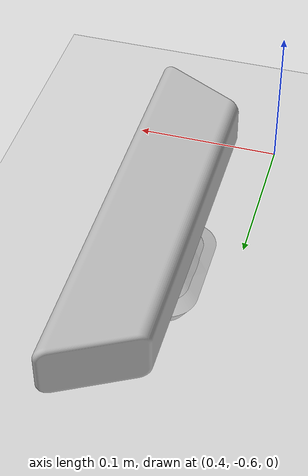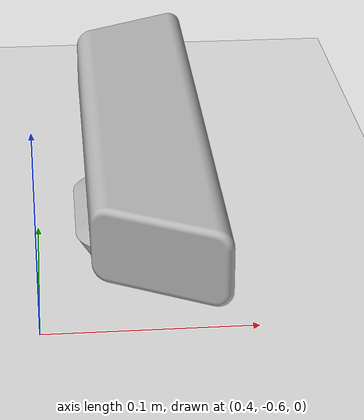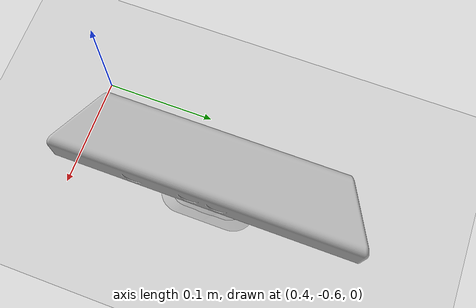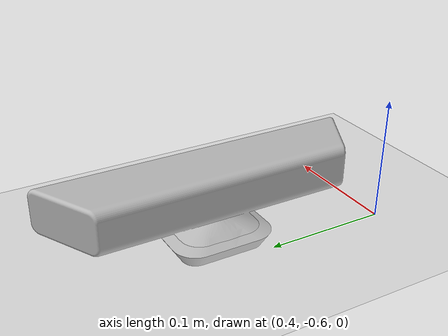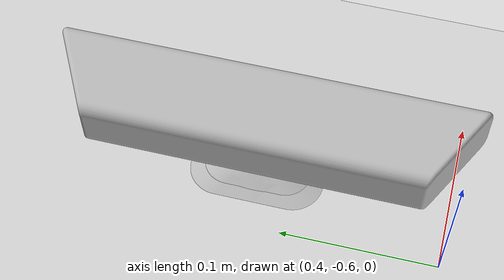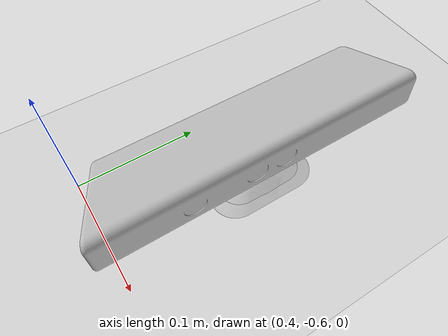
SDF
<sdf version="1.6">
 <world name="default">
  <light name="sun" type="directional">
   <pose>0 0 10 0 -0 0</pose>
   <diffuse>0.8 0.8 0.8 1</diffuse>
   <specular>0.2 0.2 0.2 1</specular>
   <attenuation>
    <range>1000</range>
    <constant>0.9</constant>
    <linear>0.01</linear>
    <quadratic>0.001</quadratic>
   </attenuation>
   <direction>-0.5 0.1 -0.9</direction>
  </light>
  <model name="ground_plane">
   <static>1</static>
   <link name="link">
    <collision name="collision">
     <geometry><plane><normal>0 0 1</normal><size>100 100</size></plane></geometry>
     <surface>
      <contact><collide_bitmask>65535</collide_bitmask></contact>
      <friction><ode><mu>100</mu><mu2>50</mu2></ode></friction>
     </surface>
    </collision>
    <visual name="visual">
     <cast_shadows>0</cast_shadows>
     <geometry><plane><normal>0 0 1</normal><size>100 100</size></plane></geometry>
     <material>
      <script><uri>file://media/materials/scripts/gazebo.material</uri><name>Gazebo/Grey</name></script>
     </material>
    </visual>
   </link>
  </model>
  <gravity>0 0 -9.8</gravity>
  <magnetic_field>6e-06 2.3e-05 -4.2e-05</magnetic_field>
  <atmosphere type="adiabatic"/>
  <physics name="default_physics" default="0" type="ode">
   <max_step_size>0.001</max_step_size>
   <real_time_factor>1</real_time_factor>
   <real_time_update_rate>1000</real_time_update_rate>
  </physics>
  <scene><ambient>0.4 0.4 0.4 1</ambient><background>0.7 0.7 0.7 1</background><shadows>1</shadows></scene>
  <audio><device>default</device></audio>
  <spherical_coordinates>
   <surface_model>EARTH_WGS84</surface_model>
   <latitude_deg>0</latitude_deg>
   <longitude_deg>0</longitude_deg>
   <elevation>0</elevation>
   <heading_deg>0</heading_deg>
  </spherical_coordinates>
  <model name="kinect_ros">
   <pose>0.486418 -0.475947 0.036005 -3.3e-05 1e-06 -1e-06</pose>
   <link name="link">
    <inertial>
     <mass>0.1</mass>
     <inertia><ixx>1</ixx><ixy>0</ixy><ixz>0</ixz><iyy>1</iyy><iyz>0</iyz><izz>1</izz></inertia>
    </inertial>
    <collision name="collision"><geometry><box><size>0.073 0.276 0.072</size></box></geometry></collision>
    <visual name="visual"><geometry><mesh><uri>model://kinect/meshes/kinect.dae</uri></mesh></geometry></visual>
    <sensor name="camera" type="depth">
     <update_rate>20</update_rate>
     <camera name="__default__">
      <horizontal_fov>1.0472</horizontal_fov>
      <image><width>640</width><height>480</height><format>R8G8B8</format></image>
      <clip><near>0.05</near><far>3</far></clip>
     </camera>
     <plugin name="camera_plugin" filename="libgazebo_ros_openni_kinect.so">
      <baseline>0.2</baseline>
      <alwaysOn>1</alwaysOn>
      <updateRate>0.0</updateRate>
      <cameraName>camera_ir</cameraName>
      <imageTopicName>/camera/color/image_raw</imageTopicName>
      <cameraInfoTopicName>/camera/color/camera_info</cameraInfoTopicName>
      <depthImageTopicName>/camera/depth/image_raw</depthImageTopicName>
      <depthImageCameraInfoTopicName>/camera/depth/camera_info</depthImageCameraInfoTopicName>
      <pointCloudTopicName>/camera/depth/points</pointCloudTopicName>
      <frameName>camera_link</frameName>
      <pointCloudCutoff>0.5</pointCloudCutoff>
      <pointCloudCutoffMax>3.0</pointCloudCutoffMax>
      <distortionK1>0</distortionK1>
      <distortionK2>0</distortionK2>
      <distortionK3>0</distortionK3>
      <distortionT1>0</distortionT1>
      <distortionT2>0</distortionT2>
      <CxPrime>0</CxPrime>
      <Cx>0</Cx>
      <Cy>0</Cy>
      <focalLength>0</focalLength>
      <hackBaseline>0</hackBaseline>
     </plugin>
    </sensor>
   </link>
  </model>
 </world>
</sdf>
